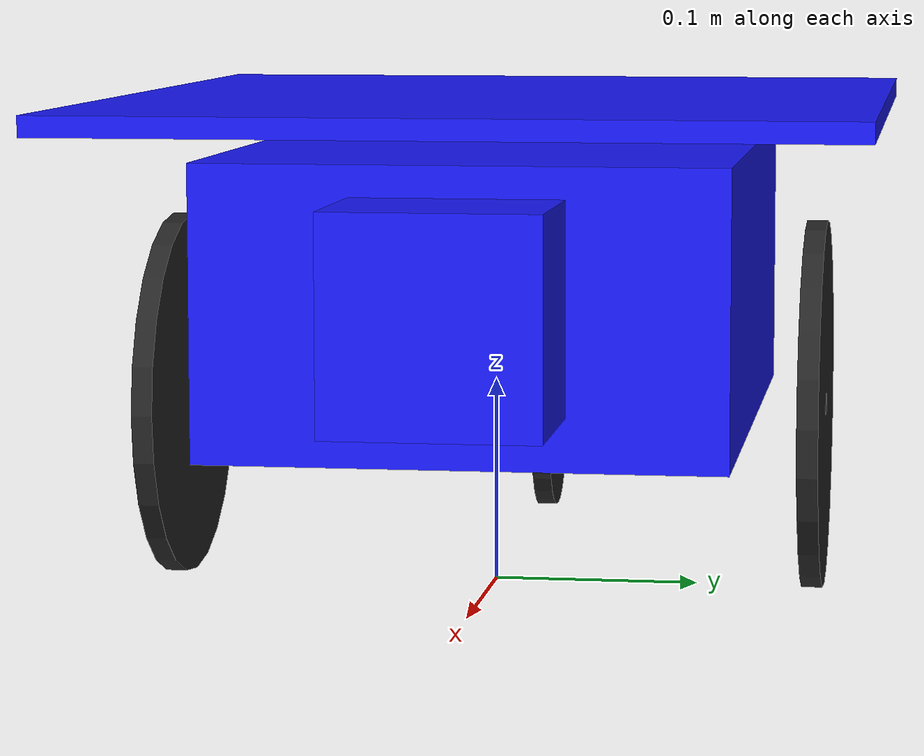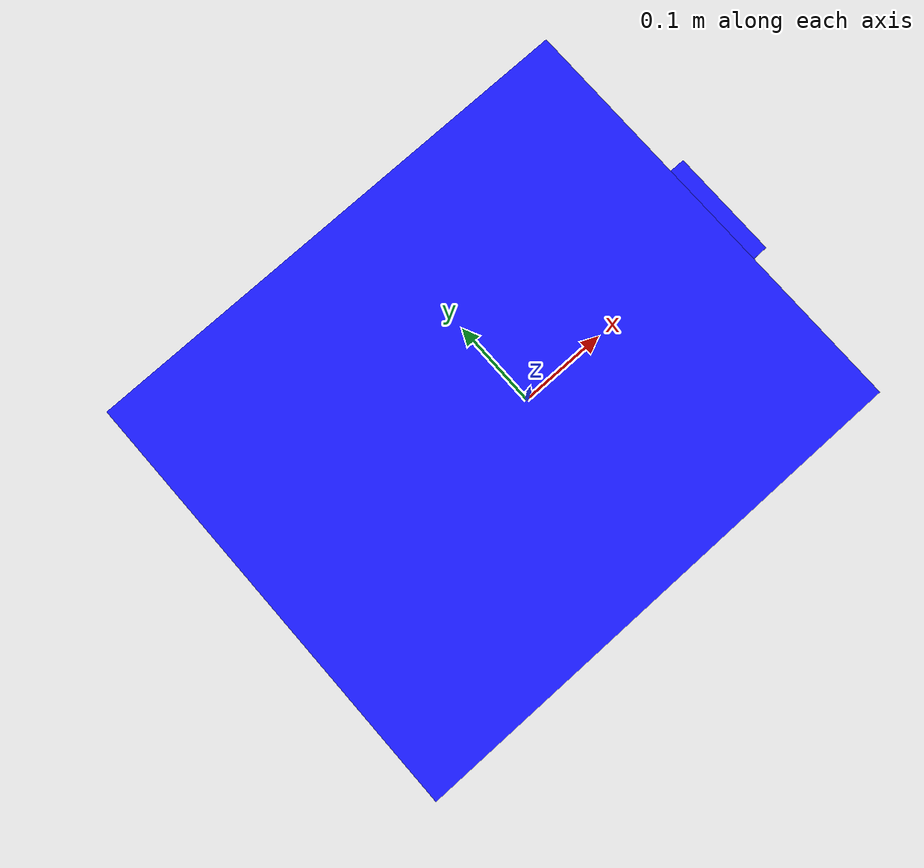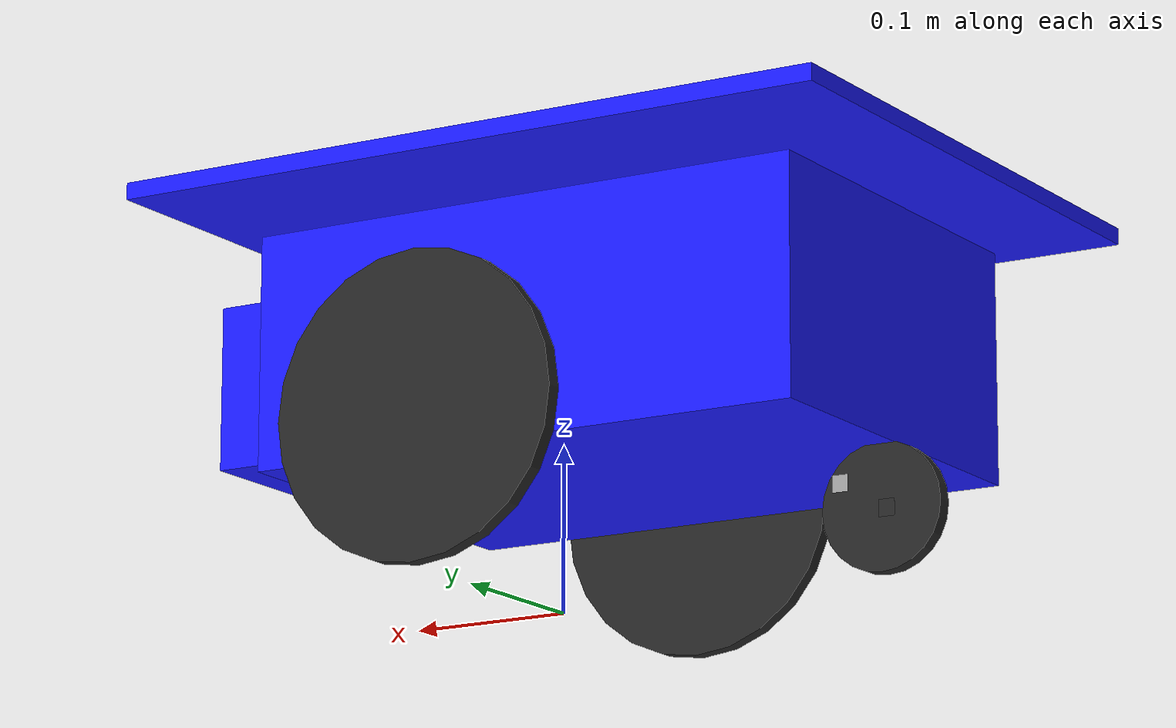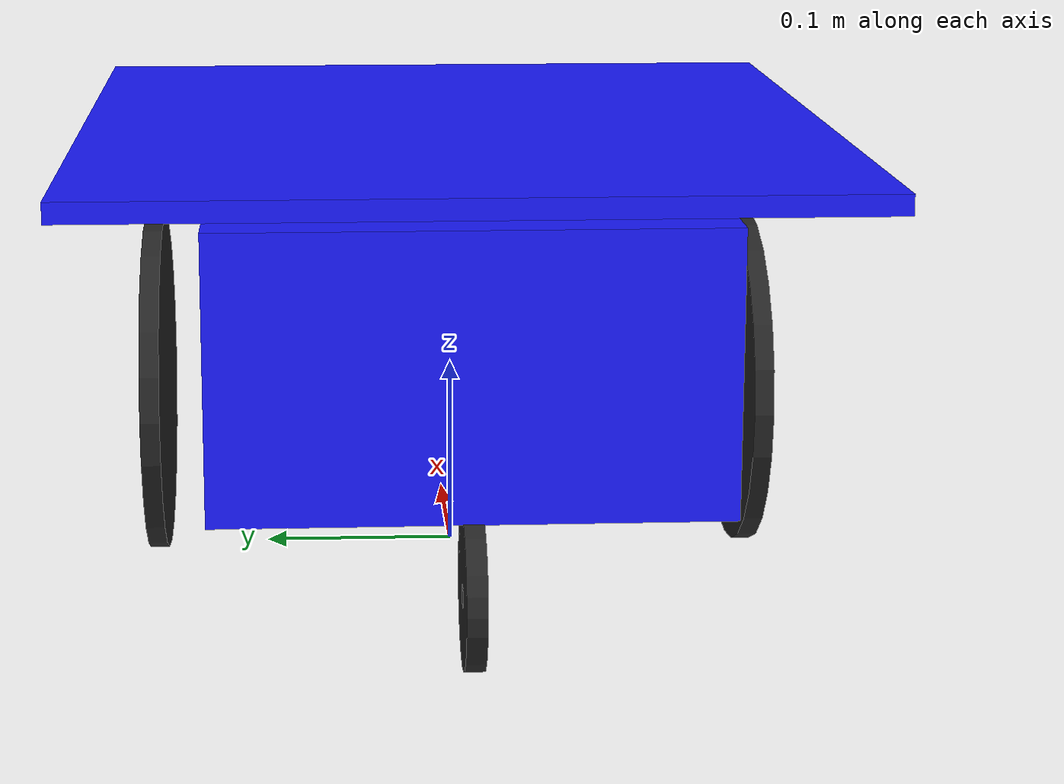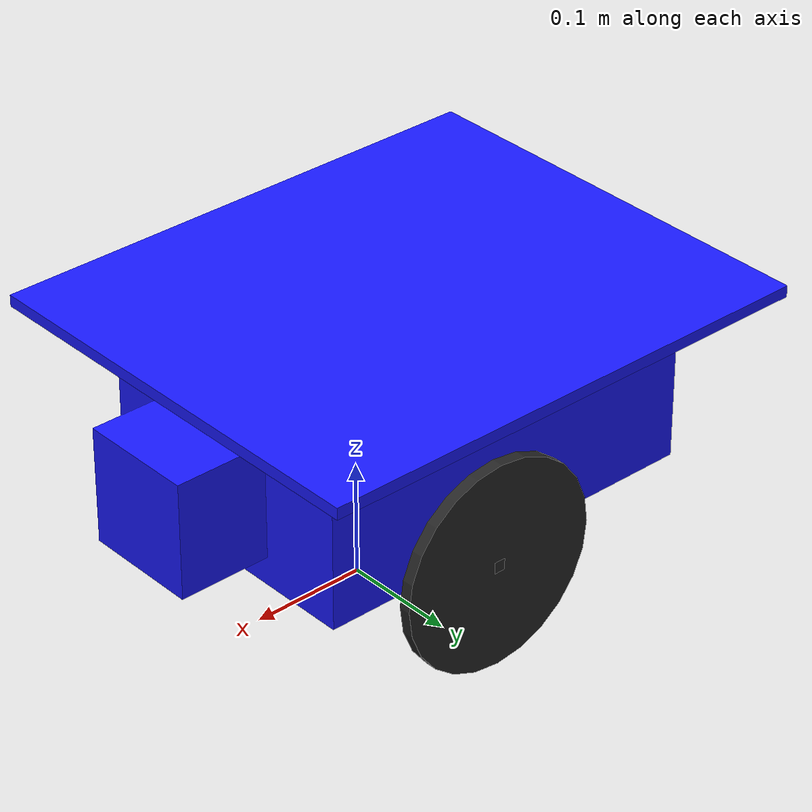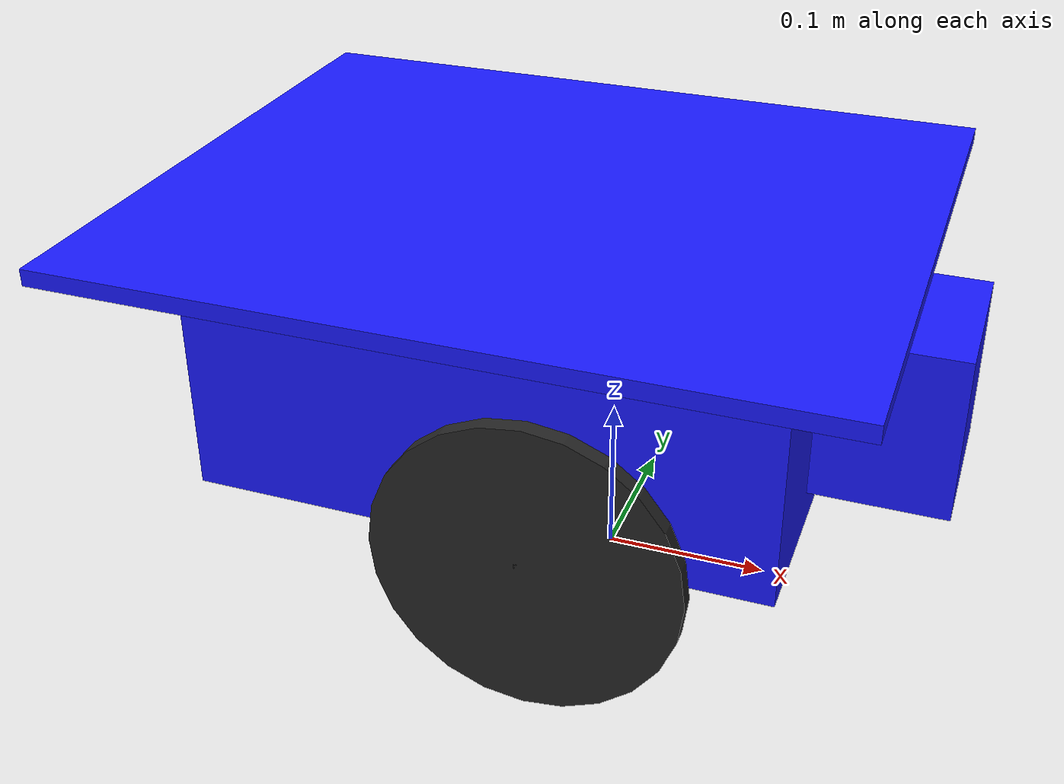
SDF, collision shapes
<sdf version='1.9'>
  <model name='pioneer3dx_migration_sensor_config_1'>

    <pose>0 0 0 0 0 0</pose>

    <link name='base_footprint'>
      <inertial>
        <pose>-0.04998062738774569 0 0.0006730273410235008 0 0 0</pose>
        <mass>3.5101100000000001</mass>
        <inertia>
          <ixx>3.0005515631402102</ixx>
          <ixy>0</ixy>
          <ixz>-1.5292334140810441e-05</ixz>
          <iyy>3.0005547809228719</iyy>
          <iyz>0</iyz>
          <izz>3.0000042177826618</izz>
        </inertia>
      </inertial>
      <sensor name='pioneer3dx_front_laser_sensor' type='gpu_lidar'>
        <pose>-0.045 0 0.305 0 0 0</pose>
        <ignition_frame_id>pioneer3dx_migration_sensor_config_1/front_laser_link</ignition_frame_id>
        <topic>/pioneer3dx_migration_sensor_config_1/front_laser</topic>
        <update_rate>20</update_rate>
        <lidar>
            <scan>
                <horizontal>
                    <samples>541</samples>
                    <resolution>1</resolution>
                    <min_angle>-3.1415926535897932</min_angle>
                    <max_angle>3.1415926535897932</max_angle>
                </horizontal>
            </scan>
            <range>
                <min>0.1</min>
                <max>15.0</max>
                <resolution>0.03</resolution>
            </range>
        </lidar>
        <always_on>1</always_on>
        <visualize>0</visualize>
      </sensor>
      <collision name='base_footprint_collision'>
        <pose>-0.045 0 0.145 0 0 0</pose>
        <geometry>
          <box>
            <size>0.35 0.25 0.14</size>
          </box>
        </geometry>
      </collision>
      <collision name='base_footprint_fixed_joint_lump__front_sonar_collision_1'>
        <pose>0.109 0 0.209 0 0 0</pose>
        <geometry>
          <box>
            <size>0.01 0.01 0.01</size>
          </box>
        </geometry>
      </collision>
      <collision name='base_footprint_fixed_joint_lump__top_plate_collision_2'>
        <pose>-0.045 0 0.234 0 0 0</pose>
        <geometry>
          <box>
            <size>0.45 0.38 0.01</size>
          </box>
        </geometry>
      </collision>
      <collision name='base_footprint_fixed_joint_lump__lms100_collision_3'>
        <pose>0.16 0 0.15 0 0 0</pose>
        <geometry>
          <box>
            <size>0.1 0.1 0.1</size>
          </box>
        </geometry>
      </collision>
      <visual name="kinect_visual">
        <pose>0 0 0.385 0 0 0</pose>
        <geometry>
          <mesh>
            <uri>model://pioneer3dx_migration_sensor_config_1/meshes/kinect.dae</uri>
          </mesh>
        </geometry>
      </visual>
      <visual name="box_visual">
        <pose>-0.03 0 0.285 0 0 0</pose>
        <geometry>
          <box>
            <size>0.1 0.1 0.1</size>
          </box>
        </geometry>
        <material>
            <ambient>0.1 0.1 1.0 1</ambient>
            <diffuse>0.1 0.1 1.0 1</diffuse>
            <specular>0.0 0.0 1.0 1</specular>
          </material>
      </visual>
      <visual name='base_footprint_fixed_joint_lump__base_visual_visual'>
        <pose>-0.045 0 0.148 0 0 0</pose>
        <geometry>
          <mesh>
            <scale>1 1 1</scale>
            <uri>model://pioneer3dx_migration_sensor_config_1/meshes/chassis.stl</uri>
          </mesh>
        </geometry>
        <material>
          <diffuse>1 0 0 1</diffuse>
          <ambient>1 0 0 1</ambient>
        </material>
      </visual>
      <visual name='base_footprint_fixed_joint_lump__front_sonar_vis_visual_1'>
        <pose>0.109 0 0.209 0 0 0</pose>
        <geometry>
          <mesh>
            <scale>1 1 1</scale>
            <uri>model://pioneer3dx_migration_sensor_config_1/meshes/front_sonar.stl</uri>
          </mesh>
        </geometry>
        <material>
          <diffuse>0.89375 0.72875 0.2625 1</diffuse>
          <ambient>0.89375 0.72875 0.2625 1</ambient>
        </material>
      </visual>
      <visual name='base_footprint_fixed_joint_lump__base_visual_visual_2'>
        <pose>-0.045 0 0.234 0 0 0</pose>
        <geometry>
          <mesh>
            <scale>1 1 1</scale>
            <uri>model://pioneer3dx_migration_sensor_config_1/meshes/top.stl</uri>
          </mesh>
        </geometry>
        <material>
          <diffuse>0.0475 0.0475 0.0475 1</diffuse>
          <ambient>0.0475 0.0475 0.0475 1</ambient>
        </material>
      </visual>
      <visual name='base_footprint_fixed_joint_lump__lms100_visual_3'>
        <pose>0.16 0 0.15 0 0 0</pose>
        <geometry>
          <mesh>
            <scale>1 1 1</scale>
            <uri>model://pioneer3dx_migration_sensor_config_1/meshes/lms100.dae</uri>
          </mesh>
        </geometry>
      </visual>
    </link>
    <joint name='base_left_wheel_joint' type='revolute'>
      <pose relative_to='base_footprint'>0 0.158 0.091 0 0 0</pose>
      <parent>base_footprint</parent>
      <child>p3dx_left_wheel</child>
      <axis>
        <xyz>0 1 0</xyz>
        <limit>
          <effort>100</effort>
          <velocity>100</velocity>
          <lower>-10000000000000000</lower>
          <upper>10000000000000000</upper>
        </limit>
        <dynamics>
          <spring_reference>0</spring_reference>
          <spring_stiffness>0</spring_stiffness>
        </dynamics>
      </axis>
    </joint>
    <link name='p3dx_left_wheel'>
      <pose relative_to='base_left_wheel_joint'>0 0 0 0 0 0</pose>
      <inertial>
        <mass>0.51000000000000001</mass>
        <inertia>
          <ixx>0.024823531193999999</ixx>
          <ixy>0</ixy>
          <ixz>0</ixz>
          <iyy>0.030436320855999999</iyy>
          <iyz>0</iyz>
          <izz>0.023527955885999999</izz>
        </inertia>
      </inertial>
      <collision name='p3dx_left_wheel_collision'>
        <pose>0 0 0 -1.570796326794896 0 0</pose>
        <geometry>
          <cylinder>
            <length>0.01</length>
            <radius>0.089999999999999997</radius>
          </cylinder>
        </geometry>
      </collision>
      <collision name='p3dx_left_wheel_fixed_joint_lump__p3dx_left_hubcap_collision_1'>
        <geometry>
          <box>
            <size>0.01 0.01 0.01</size>
          </box>
        </geometry>
      </collision>
      <visual name='p3dx_left_wheel_fixed_joint_lump__base_visual_visual'>
        <geometry>
          <mesh>
            <scale>1 1 1</scale>
            <uri>model://pioneer3dx_migration_sensor_config_1/meshes/left_wheel.stl</uri>
          </mesh>
        </geometry>
        <material>
          <diffuse>0.14625 0.14625 0.14625 1</diffuse>
          <ambient>0.14625 0.14625 0.14625 1</ambient>
        </material>
      </visual>
      <visual name='p3dx_left_wheel_fixed_joint_lump__base_visual_visual_1'>
        <geometry>
          <mesh>
            <scale>1 1 1</scale>
            <uri>model://pioneer3dx_migration_sensor_config_1/meshes/left_hubcap.stl</uri>
          </mesh>
        </geometry>
        <material>
          <diffuse>1 1 0.18875 1</diffuse>
          <ambient>1 1 0.18875 1</ambient>
        </material>
      </visual>
    </link>
    <joint name='base_right_wheel_joint' type='revolute'>
      <pose relative_to='base_footprint'>0 -0.158 0.091 0 0 0</pose>
      <parent>base_footprint</parent>
      <child>p3dx_right_wheel</child>
      <axis>
        <xyz>0 1 0</xyz>
        <limit>
          <effort>100</effort>
          <velocity>100</velocity>
          <lower>-10000000000000000</lower>
          <upper>10000000000000000</upper>
        </limit>
        <dynamics>
          <spring_reference>0</spring_reference>
          <spring_stiffness>0</spring_stiffness>
        </dynamics>
      </axis>
    </joint>
    <link name='p3dx_right_wheel'>
      <pose relative_to='base_right_wheel_joint'>0 0 0 0 0 0</pose>
      <inertial>
        <mass>0.51000000000000001</mass>
        <inertia>
          <ixx>0.024823531193999999</ixx>
          <ixy>0</ixy>
          <ixz>0</ixz>
          <iyy>0.030436320855999999</iyy>
          <iyz>0</iyz>
          <izz>0.023527955885999999</izz>
        </inertia>
      </inertial>
      <collision name='p3dx_right_wheel_collision'>
        <pose>0 0 0 -1.570796326794896 0 0</pose>
        <geometry>
          <cylinder>
            <length>0.01</length>
            <radius>0.089999999999999997</radius>
          </cylinder>
        </geometry>
      </collision>
      <collision name='p3dx_right_wheel_fixed_joint_lump__p3dx_right_hubcap_collision_1'>
        <geometry>
          <box>
            <size>0.01 0.01 0.01</size>
          </box>
        </geometry>
      </collision>
      <visual name='p3dx_right_wheel_fixed_joint_lump__base_visual_visual'>
        <geometry>
          <mesh>
            <scale>1 1 1</scale>
            <uri>model://pioneer3dx_migration_sensor_config_1/meshes/right_wheel.stl</uri>
          </mesh>
        </geometry>
        <material>
          <diffuse>0.14625 0.14625 0.14625 1</diffuse>
          <ambient>0.14625 0.14625 0.14625 1</ambient>
        </material>
      </visual>
      <visual name='p3dx_right_wheel_fixed_joint_lump__base_visual_visual_1'>
        <geometry>
          <mesh>
            <scale>1 1 1</scale>
            <uri>model://pioneer3dx_migration_sensor_config_1/meshes/right_hubcap.stl</uri>
          </mesh>
        </geometry>
        <material>
          <diffuse>1 1 0.18875 1</diffuse>
          <ambient>1 1 0.18875 1</ambient>
        </material>
      </visual>
    </link>
    <joint name='base_swivel_joint' type='revolute'>
      <pose relative_to='base_footprint'>-0.185 0 0.055 0 0 0</pose>
      <parent>base_footprint</parent>
      <child>swivel</child>
      <axis>
        <xyz>0 0 1</xyz>
        <limit>
          <effort>100</effort>
          <velocity>100</velocity>
          <lower>-10000000000000000</lower>
          <upper>10000000000000000</upper>
        </limit>
        <dynamics>
          <spring_reference>0</spring_reference>
          <spring_stiffness>0</spring_stiffness>
        </dynamics>
      </axis>
    </joint>
    <link name='swivel'>
      <pose relative_to='base_swivel_joint'>0 0 0 0 0 0</pose>
      <inertial>
        <mass>0.10000000000000001</mass>
        <inertia>
          <ixx>0.01</ixx>
          <ixy>0</ixy>
          <ixz>0</ixz>
          <iyy>0.01</iyy>
          <iyz>0</iyz>
          <izz>0.01</izz>
        </inertia>
      </inertial>
      <collision name='swivel_collision'>
        <geometry>
          <box>
            <size>0.01 0.01 0.01</size>
          </box>
        </geometry>
      </collision>
      <visual name='swivel_fixed_joint_lump__base_visual_visual'>
        <geometry>
          <mesh>
            <scale>1 1 1</scale>
            <uri>model://pioneer3dx_migration_sensor_config_1/meshes/swivel.stl</uri>
          </mesh>
        </geometry>
        <material>
          <diffuse>0.625 0.625 0.625 1</diffuse>
          <ambient>0.625 0.625 0.625 1</ambient>
        </material>
      </visual>
    </link>
    <joint name='swivel_hubcap_joint' type='revolute'>
      <pose relative_to='swivel'>-0.026 0 -0.016 0 0 0</pose>
      <parent>swivel</parent>
      <child>center_wheel</child>
      <axis>
        <xyz>0 1 0</xyz>
        <limit>
          <effort>100</effort>
          <velocity>100</velocity>
          <lower>-10000000000000000</lower>
          <upper>10000000000000000</upper>
        </limit>
        <dynamics>
          <spring_reference>0</spring_reference>
          <spring_stiffness>0</spring_stiffness>
        </dynamics>
      </axis>
    </joint>
    <link name='center_wheel'>
      <pose relative_to='swivel_hubcap_joint'>0 0 0 0 0 0</pose>
      <inertial>
        <pose>-0.0003181818181818183 0 -9.090909090909093e-05 0 0 0</pose>
        <mass>0.11</mass>
        <inertia>
          <ixx>0.024823540284909091</ixx>
          <ixy>-0.001423467356</ixy>
          <ixz>0.0010054278418181819</ixz>
          <iyy>0.030436441310545449</iyy>
          <iyz>-8.5469340000000008e-06</iyz>
          <izz>0.02352806724963636</izz>
        </inertia>
      </inertial>
      <collision name='center_wheel_collision'>
        <pose>0 0 0 -1.570796326794896 0 0</pose>
        <geometry>
          <cylinder>
            <length>0.01</length>
            <radius>0.037499999999999999</radius>
          </cylinder>
        </geometry>
      </collision>
      <collision name='center_wheel_fixed_joint_lump__center_hubcap_collision_1'>
        <pose>-0.0035 0 -0.001 0 0 0</pose>
        <geometry>
          <box>
            <size>0.01 0.01 0.01</size>
          </box>
        </geometry>
      </collision>
      <visual name='center_wheel_fixed_joint_lump__base_visual_visual'>
        <geometry>
          <mesh>
            <scale>1 1 1</scale>
            <uri>model://pioneer3dx_migration_sensor_config_1/meshes/center_wheel.stl</uri>
          </mesh>
        </geometry>
        <material>
          <diffuse>0.14625 0.14625 0.14625 1</diffuse>
          <ambient>0.14625 0.14625 0.14625 1</ambient>
        </material>
      </visual>
      <visual name='center_wheel_fixed_joint_lump__base_visual_visual_1'>
        <pose>-0.0035 0 -0.001 0 0 0</pose>
        <geometry>
          <mesh>
            <scale>1 1 1</scale>
            <uri>model://pioneer3dx_migration_sensor_config_1/meshes/center_hubcap.stl</uri>
          </mesh>
        </geometry>
        <material>
          <diffuse>0.625 0.625 0.625 1</diffuse>
          <ambient>0.625 0.625 0.625 1</ambient>
        </material>
      </visual>
    </link>
    <plugin
        filename="ignition-gazebo-diff-drive-system"
        name="ignition::gazebo::systems::DiffDrive">
        <left_joint>base_left_wheel_joint</left_joint>
        <right_joint>base_right_wheel_joint</right_joint>
        <wheel_separation>0.316</wheel_separation>
        <wheel_radius>0.09</wheel_radius>
        <odom_publish_frequency>20</odom_publish_frequency>
        <max_linear_acceleration>2.5</max_linear_acceleration>
        <min_linear_acceleration>-2.5</min_linear_acceleration>
        <max_angular_acceleration>3.2</max_angular_acceleration>
        <min_angular_acceleration>-3.2</min_angular_acceleration>
        <max_linear_velocity>0.5</max_linear_velocity>
        <min_linear_velocity>-0.5</min_linear_velocity>
        <max_angular_velocity>1</max_angular_velocity>
        <min_angular_velocity>-1</min_angular_velocity>
        <topic>pioneer3dx_migration_sensor_config_1/cmd_vel</topic>
      	<odom_topic>pioneer3dx_migration_sensor_config_1/odom</odom_topic>
      	<tf_topic>pioneer3dx_migration_sensor_config_1/tf</tf_topic>
      	<frame_id>pioneer3dx_migration_sensor_config_1/odom</frame_id>
        <child_frame_id>pioneer3dx_migration_sensor_config_1/base_footprint</child_frame_id>
      </plugin>

  </model>
</sdf>
